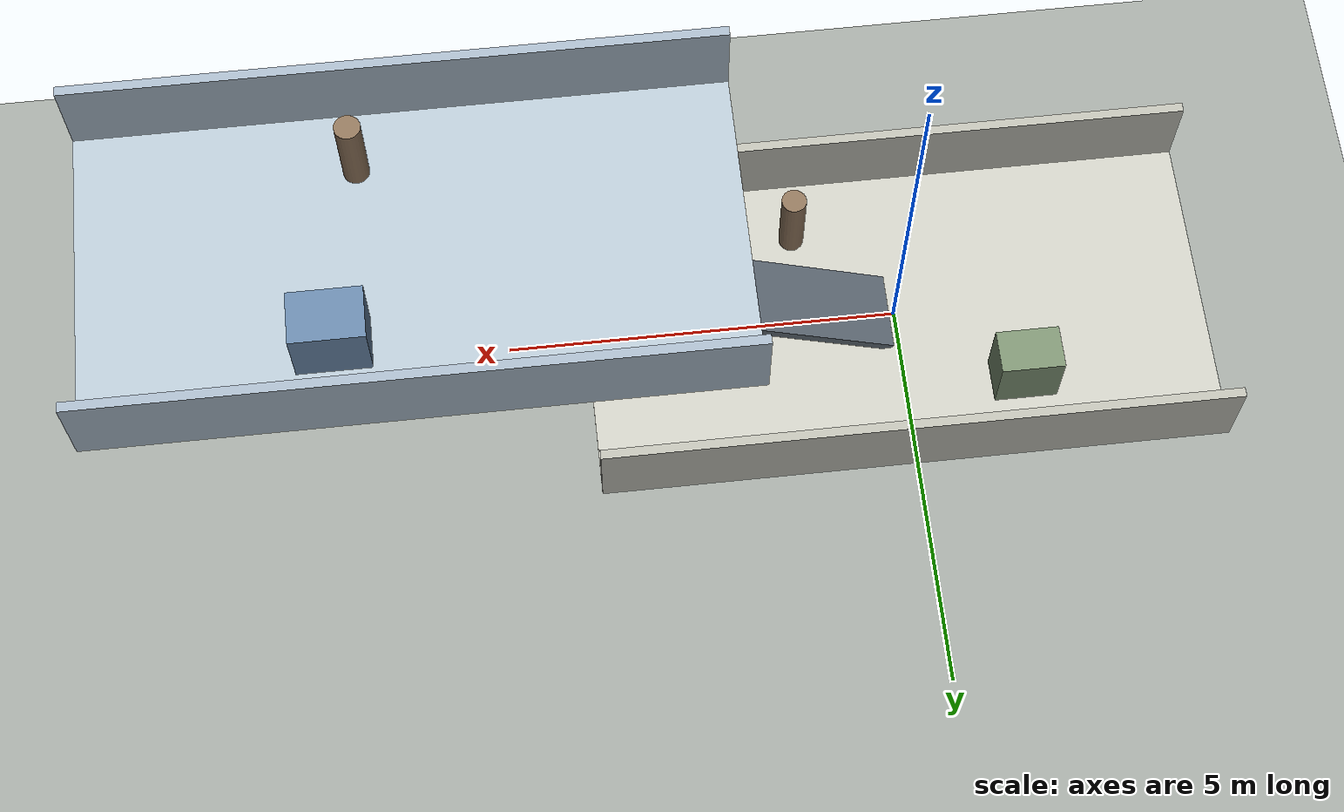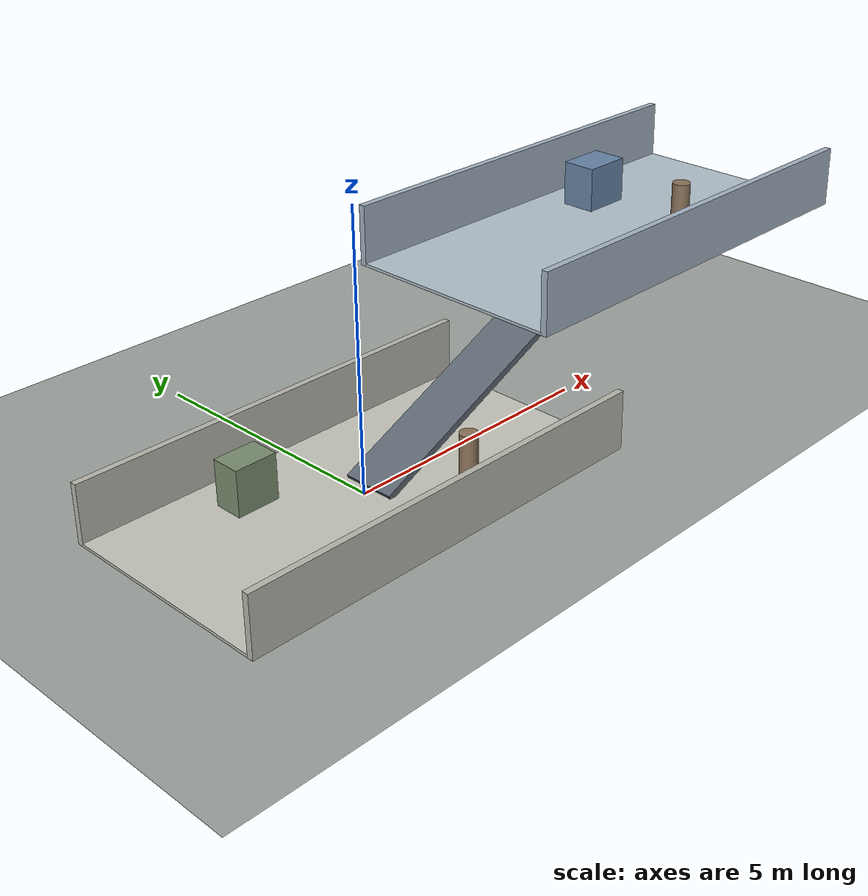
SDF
<?xml version="1.0" ?>
<sdf version="1.6">
  <world name="go2w_phase3c_hospital_multifloor_world">
    <physics name="1ms" type="ignored">
      <max_step_size>0.001</max_step_size>
      <real_time_factor>1.0</real_time_factor>
    </physics>

    <plugin filename="ignition-gazebo-physics-system" name="gz::sim::systems::Physics"/>
    <plugin filename="ignition-gazebo-sensors-system" name="gz::sim::systems::Sensors"/>
    <plugin filename="ignition-gazebo-imu-system" name="gz::sim::systems::Imu"/>
    <plugin filename="ignition-gazebo-user-commands-system" name="gz::sim::systems::UserCommands"/>
    <plugin filename="ignition-gazebo-scene-broadcaster-system" name="gz::sim::systems::SceneBroadcaster"/>

    <light type="directional" name="sun">
      <cast_shadows>true</cast_shadows>
      <pose>0 0 12 0 0 0</pose>
      <diffuse>0.82 0.82 0.78 1</diffuse>
      <specular>0.25 0.25 0.25 1</specular>
      <attenuation>
        <range>1000</range>
        <constant>0.9</constant>
        <linear>0.01</linear>
        <quadratic>0.001</quadratic>
      </attenuation>
      <direction>-0.35 0.2 -0.92</direction>
    </light>

    <model name="hospital_ground_plane">
      <static>true</static>
      <link name="link">
        <collision name="collision">
          <geometry>
            <plane>
              <normal>0 0 1</normal>
              <size>80 80</size>
            </plane>
          </geometry>
        </collision>
        <visual name="visual">
          <geometry>
            <plane>
              <normal>0 0 1</normal>
              <size>80 80</size>
            </plane>
          </geometry>
          <material>
            <ambient>0.62 0.64 0.62 1</ambient>
            <diffuse>0.62 0.64 0.62 1</diffuse>
          </material>
        </visual>
      </link>
    </model>

    <model name="hospital_floor_1_deck">
      <static>true</static>
      <pose>0 0 0.025 0 0 0</pose>
      <link name="link">
        <collision name="collision">
          <geometry><box><size>8.0 4.0 0.05</size></box></geometry>
        </collision>
        <visual name="visual">
          <geometry><box><size>8.0 4.0 0.05</size></box></geometry>
          <material>
            <ambient>0.78 0.78 0.74 1</ambient>
            <diffuse>0.78 0.78 0.74 1</diffuse>
          </material>
        </visual>
      </link>
    </model>

    <model name="hospital_floor_2_deck">
      <static>true</static>
      <pose>6.0 0 2.825 0 0 0</pose>
      <link name="link">
        <collision name="collision">
          <geometry><box><size>8.0 4.0 0.05</size></box></geometry>
        </collision>
        <visual name="visual">
          <geometry><box><size>8.0 4.0 0.05</size></box></geometry>
          <material>
            <ambient>0.70 0.76 0.80 1</ambient>
            <diffuse>0.70 0.76 0.80 1</diffuse>
          </material>
        </visual>
      </link>
    </model>

    <model name="hospital_manual_stair_connector">
      <static>true</static>
      <pose>3.0 0 1.42 0 -0.44 0</pose>
      <link name="link">
        <collision name="collision">
          <geometry><box><size>6.4 1.0 0.12</size></box></geometry>
        </collision>
        <visual name="visual">
          <geometry><box><size>6.4 1.0 0.12</size></box></geometry>
          <material>
            <ambient>0.36 0.40 0.44 1</ambient>
            <diffuse>0.36 0.40 0.44 1</diffuse>
          </material>
        </visual>
      </link>
    </model>

    <model name="hospital_floor_1_corridor_walls">
      <static>true</static>
      <link name="link">
        <pose>0 2.05 0.55 0 0 0</pose>
        <collision name="north_collision">
          <geometry><box><size>8.0 0.12 1.1</size></box></geometry>
        </collision>
        <visual name="north_visual">
          <geometry><box><size>8.0 0.12 1.1</size></box></geometry>
          <material><ambient>0.72 0.72 0.68 1</ambient><diffuse>0.72 0.72 0.68 1</diffuse></material>
        </visual>
      </link>
      <link name="south_link">
        <pose>0 -2.05 0.55 0 0 0</pose>
        <collision name="south_collision">
          <geometry><box><size>8.0 0.12 1.1</size></box></geometry>
        </collision>
        <visual name="south_visual">
          <geometry><box><size>8.0 0.12 1.1</size></box></geometry>
          <material><ambient>0.72 0.72 0.68 1</ambient><diffuse>0.72 0.72 0.68 1</diffuse></material>
        </visual>
      </link>
    </model>

    <model name="hospital_floor_2_corridor_walls">
      <static>true</static>
      <link name="north_link">
        <pose>6 2.05 3.35 0 0 0</pose>
        <collision name="north_collision">
          <geometry><box><size>8.0 0.12 1.1</size></box></geometry>
        </collision>
        <visual name="north_visual">
          <geometry><box><size>8.0 0.12 1.1</size></box></geometry>
          <material><ambient>0.64 0.70 0.76 1</ambient><diffuse>0.64 0.70 0.76 1</diffuse></material>
        </visual>
      </link>
      <link name="south_link">
        <pose>6 -2.05 3.35 0 0 0</pose>
        <collision name="south_collision">
          <geometry><box><size>8.0 0.12 1.1</size></box></geometry>
        </collision>
        <visual name="south_visual">
          <geometry><box><size>8.0 0.12 1.1</size></box></geometry>
          <material><ambient>0.64 0.70 0.76 1</ambient><diffuse>0.64 0.70 0.76 1</diffuse></material>
        </visual>
      </link>
    </model>

    <model name="hospital_floor_1_room_blocks">
      <static>true</static>
      <pose>-1.5 1.1 0.45 0 0 0</pose>
      <link name="link">
        <collision name="collision">
          <geometry><box><size>0.8 0.55 0.9</size></box></geometry>
        </collision>
        <visual name="visual">
          <geometry><box><size>0.8 0.55 0.9</size></box></geometry>
          <material><ambient>0.48 0.56 0.44 1</ambient><diffuse>0.48 0.56 0.44 1</diffuse></material>
        </visual>
      </link>
    </model>

    <model name="hospital_floor_2_nurse_station_block">
      <static>true</static>
      <pose>7.0 1.1 3.25 0 0 0</pose>
      <link name="link">
        <collision name="collision">
          <geometry><box><size>0.9 0.65 0.85</size></box></geometry>
        </collision>
        <visual name="visual">
          <geometry><box><size>0.9 0.65 0.85</size></box></geometry>
          <material><ambient>0.40 0.52 0.65 1</ambient><diffuse>0.40 0.52 0.65 1</diffuse></material>
        </visual>
      </link>
    </model>

    <model name="hospital_localization_columns">
      <static>true</static>
      <link name="floor_1_column">
        <pose>1.2 -1.2 0.55 0 0 0</pose>
        <collision name="collision">
          <geometry><cylinder><radius>0.16</radius><length>1.1</length></cylinder></geometry>
        </collision>
        <visual name="visual">
          <geometry><cylinder><radius>0.16</radius><length>1.1</length></cylinder></geometry>
          <material><ambient>0.55 0.45 0.35 1</ambient><diffuse>0.55 0.45 0.35 1</diffuse></material>
        </visual>
      </link>
      <link name="floor_2_column">
        <pose>6.6 -1.2 3.35 0 0 0</pose>
        <collision name="collision">
          <geometry><cylinder><radius>0.16</radius><length>1.1</length></cylinder></geometry>
        </collision>
        <visual name="visual">
          <geometry><cylinder><radius>0.16</radius><length>1.1</length></cylinder></geometry>
          <material><ambient>0.55 0.45 0.35 1</ambient><diffuse>0.55 0.45 0.35 1</diffuse></material>
        </visual>
      </link>
    </model>
  </world>
</sdf>
